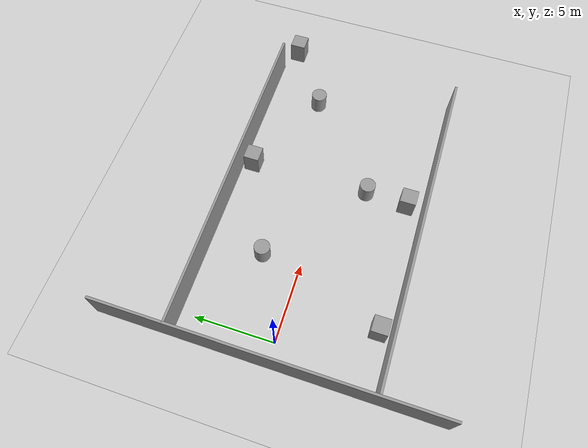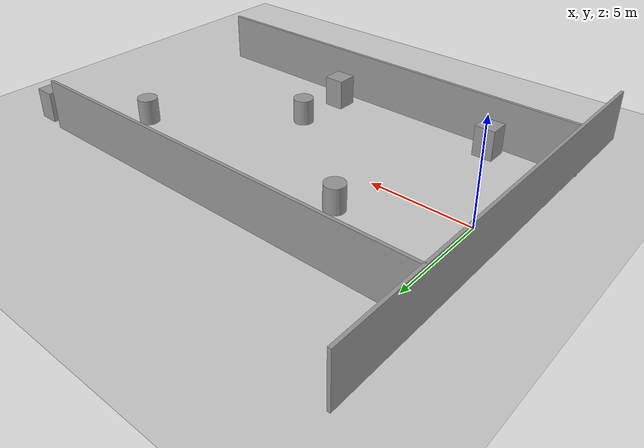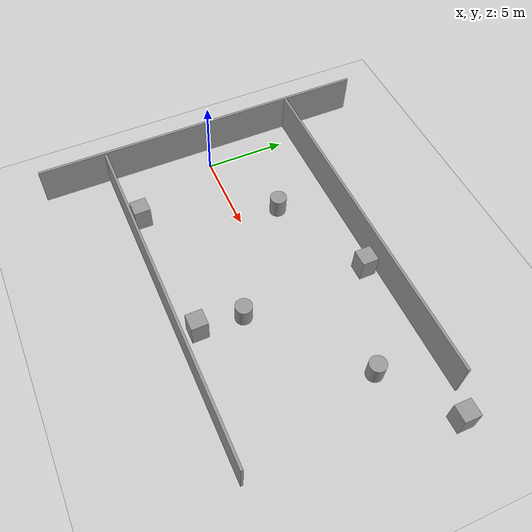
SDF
<sdf version="1.7">
 <world name="default">
  <light name="sun" type="directional">
   <pose>0 0 10 0 -0 0</pose>
   <diffuse>0.8 0.8 0.8 1</diffuse>
   <specular>0.2 0.2 0.2 1</specular>
   <attenuation>
    <range>1000</range>
    <constant>0.9</constant>
    <linear>0.01</linear>
    <quadratic>0.001</quadratic>
   </attenuation>
   <direction>-0.5 0.1 -0.9</direction>
   <spot><inner_angle>0</inner_angle><outer_angle>0</outer_angle><falloff>0</falloff></spot>
  </light>
  <model name="ground_plane">
   <static>1</static>
   <link name="link">
    <collision name="collision">
     <geometry><plane><normal>0 0 1</normal><size>100 100</size></plane></geometry>
     <surface>
      <contact><collide_bitmask>65535</collide_bitmask></contact>
      <friction><ode><mu>100</mu><mu2>50</mu2></ode></friction>
     </surface>
    </collision>
    <visual name="visual">
     <geometry><plane><normal>0 0 1</normal><size>100 100</size></plane></geometry>
     <material>
      <script><uri>file://media/materials/scripts/gazebo.material</uri><name>Gazebo/Grey</name></script>
     </material>
    </visual>
   </link>
  </model>
  <physics type="ode">
   <max_step_size>0.001</max_step_size>
   <real_time_factor>1</real_time_factor>
   <real_time_update_rate>1000</real_time_update_rate>
  </physics>
  <gravity>0 0 -9.8</gravity>
  <magnetic_field>6e-06 2.3e-05 -4.2e-05</magnetic_field>
  <atmosphere type="adiabatic"/>
  <scene><ambient>0.4 0.4 0.4 1</ambient><background>0.7 0.7 0.7 1</background><shadows>1</shadows></scene>
  <spherical_coordinates>
   <surface_model>EARTH_WGS84</surface_model>
   <latitude_deg>0</latitude_deg>
   <longitude_deg>0</longitude_deg>
   <elevation>0</elevation>
   <heading_deg>0</heading_deg>
  </spherical_coordinates>
  <model name="unit_box_10obs0">
   <link name="link">
    <inertial>
     <mass>1</mass>
     <inertia>
      <ixx>0.166667</ixx>
      <ixy>0</ixy>
      <ixz>0</ixz>
      <iyy>0.166667</iyy>
      <iyz>0</iyz>
      <izz>0.166667</izz>
     </inertia>
    </inertial>
    <visual name="visual">
     <geometry><box><size>1 1 2</size></box></geometry>
     <material>
      <script><name>Gazebo/Grey</name><uri>file://media/materials/scripts/gazebo.material</uri></script>
      <shader type="pixel"><normal_map>__default__</normal_map></shader>
      <ambient>0.3 0.3 0.3 1</ambient>
      <diffuse>0.7 0.7 0.7 1</diffuse>
      <specular>0.01 0.01 0.01 1</specular>
      <emissive>0 0 0 1</emissive>
     </material>
    </visual>
    <collision name="collision">
     <geometry><box><size>1 1 1</size></box></geometry>
     <surface>
      <friction>
       <ode><mu>1</mu><mu2>1</mu2><fdir1>0 0 0</fdir1><slip1>0</slip1><slip2>0</slip2></ode>
       <torsional>
        <coefficient>1</coefficient>
        <patch_radius>0</patch_radius>
        <surface_radius>0</surface_radius>
        <use_patch_radius>1</use_patch_radius>
        <ode><slip>0</slip></ode>
       </torsional>
      </friction>
      <bounce><restitution_coefficient>0</restitution_coefficient><threshold>1e+06</threshold></bounce>
      <contact>
       <collide_without_contact>0</collide_without_contact>
       <collide_without_contact_bitmask>1</collide_without_contact_bitmask>
       <collide_bitmask>1</collide_bitmask>
       <ode>
        <soft_cfm>0</soft_cfm>
        <soft_erp>0.2</soft_erp>
        <kp>1e+13</kp>
        <kd>1</kd>
        <max_vel>0.01</max_vel>
        <min_depth>0</min_depth>
       </ode>
       <bullet>
        <split_impulse>1</split_impulse>
        <split_impulse_penetration_threshold>-0.01</split_impulse_penetration_threshold>
        <soft_cfm>0</soft_cfm>
        <soft_erp>0.2</soft_erp>
        <kp>1e+13</kp>
        <kd>1</kd>
       </bullet>
      </contact>
     </surface>
    </collision>
   </link>
   <static>0</static>
   <pose>21 5.2 0.5 0 -0 0</pose>
  </model>
  <model name="unit_box_10obs1">
   <link name="link">
    <inertial>
     <mass>1</mass>
     <inertia>
      <ixx>0.166667</ixx>
      <ixy>0</ixy>
      <ixz>0</ixz>
      <iyy>0.166667</iyy>
      <iyz>0</iyz>
      <izz>0.166667</izz>
     </inertia>
    </inertial>
    <visual name="visual">
     <geometry><box><size>1 1 2</size></box></geometry>
     <material>
      <script><name>Gazebo/Grey</name><uri>file://media/materials/scripts/gazebo.material</uri></script>
      <shader type="pixel"><normal_map>__default__</normal_map></shader>
      <ambient>0.3 0.3 0.3 1</ambient>
      <diffuse>0.7 0.7 0.7 1</diffuse>
      <specular>0.01 0.01 0.01 1</specular>
      <emissive>0 0 0 1</emissive>
     </material>
    </visual>
    <collision name="collision">
     <geometry><box><size>1 1 1</size></box></geometry>
     <surface>
      <friction>
       <ode><mu>1</mu><mu2>1</mu2><fdir1>0 0 0</fdir1><slip1>0</slip1><slip2>0</slip2></ode>
       <torsional>
        <coefficient>1</coefficient>
        <patch_radius>0</patch_radius>
        <surface_radius>0</surface_radius>
        <use_patch_radius>1</use_patch_radius>
        <ode><slip>0</slip></ode>
       </torsional>
      </friction>
      <bounce><restitution_coefficient>0</restitution_coefficient><threshold>1e+06</threshold></bounce>
      <contact>
       <collide_without_contact>0</collide_without_contact>
       <collide_without_contact_bitmask>1</collide_without_contact_bitmask>
       <collide_bitmask>1</collide_bitmask>
       <ode>
        <soft_cfm>0</soft_cfm>
        <soft_erp>0.2</soft_erp>
        <kp>1e+13</kp>
        <kd>1</kd>
        <max_vel>0.01</max_vel>
        <min_depth>0</min_depth>
       </ode>
       <bullet>
        <split_impulse>1</split_impulse>
        <split_impulse_penetration_threshold>-0.01</split_impulse_penetration_threshold>
        <soft_cfm>0</soft_cfm>
        <soft_erp>0.2</soft_erp>
        <kp>1e+13</kp>
        <kd>1</kd>
       </bullet>
      </contact>
     </surface>
    </collision>
   </link>
   <static>0</static>
   <pose>11 -5.2 0.5 0 -0 0</pose>
  </model>
  <model name="unit_box_10obs2">
   <link name="link">
    <inertial>
     <mass>1</mass>
     <inertia>
      <ixx>0.166667</ixx>
      <ixy>0</ixy>
      <ixz>0</ixz>
      <iyy>0.166667</iyy>
      <iyz>0</iyz>
      <izz>0.166667</izz>
     </inertia>
    </inertial>
    <visual name="visual">
     <geometry><box><size>1 1 2</size></box></geometry>
     <material>
      <script><name>Gazebo/Grey</name><uri>file://media/materials/scripts/gazebo.material</uri></script>
      <shader type="pixel"><normal_map>__default__</normal_map></shader>
      <ambient>0.3 0.3 0.3 1</ambient>
      <diffuse>0.7 0.7 0.7 1</diffuse>
      <specular>0.01 0.01 0.01 1</specular>
      <emissive>0 0 0 1</emissive>
     </material>
    </visual>
    <collision name="collision">
     <geometry><box><size>1 1 1</size></box></geometry>
     <surface>
      <friction>
       <ode><mu>1</mu><mu2>1</mu2><fdir1>0 0 0</fdir1><slip1>0</slip1><slip2>0</slip2></ode>
       <torsional>
        <coefficient>1</coefficient>
        <patch_radius>0</patch_radius>
        <surface_radius>0</surface_radius>
        <use_patch_radius>1</use_patch_radius>
        <ode><slip>0</slip></ode>
       </torsional>
      </friction>
      <bounce><restitution_coefficient>0</restitution_coefficient><threshold>1e+06</threshold></bounce>
      <contact>
       <collide_without_contact>0</collide_without_contact>
       <collide_without_contact_bitmask>1</collide_without_contact_bitmask>
       <collide_bitmask>1</collide_bitmask>
       <ode>
        <soft_cfm>0</soft_cfm>
        <soft_erp>0.2</soft_erp>
        <kp>1e+13</kp>
        <kd>1</kd>
        <max_vel>0.01</max_vel>
        <min_depth>0</min_depth>
       </ode>
       <bullet>
        <split_impulse>1</split_impulse>
        <split_impulse_penetration_threshold>-0.01</split_impulse_penetration_threshold>
        <soft_cfm>0</soft_cfm>
        <soft_erp>0.2</soft_erp>
        <kp>1e+13</kp>
        <kd>1</kd>
       </bullet>
      </contact>
     </surface>
    </collision>
   </link>
   <static>0</static>
   <pose>11 5.2 0.499995 -1e-05 -0 0</pose>
  </model>
  <model name="unit_box_10obs3">
   <link name="link">
    <inertial>
     <mass>1</mass>
     <inertia>
      <ixx>0.166667</ixx>
      <ixy>0</ixy>
      <ixz>0</ixz>
      <iyy>0.166667</iyy>
      <iyz>0</iyz>
      <izz>0.166667</izz>
     </inertia>
    </inertial>
    <visual name="visual">
     <geometry><box><size>1 1 2</size></box></geometry>
     <material>
      <script><name>Gazebo/Grey</name><uri>file://media/materials/scripts/gazebo.material</uri></script>
      <shader type="pixel"><normal_map>__default__</normal_map></shader>
      <ambient>0.3 0.3 0.3 1</ambient>
      <diffuse>0.7 0.7 0.7 1</diffuse>
      <specular>0.01 0.01 0.01 1</specular>
      <emissive>0 0 0 1</emissive>
     </material>
    </visual>
    <collision name="collision">
     <geometry><box><size>1 1 1</size></box></geometry>
     <surface>
      <friction>
       <ode><mu>1</mu><mu2>1</mu2><fdir1>0 0 0</fdir1><slip1>0</slip1><slip2>0</slip2></ode>
       <torsional>
        <coefficient>1</coefficient>
        <patch_radius>0</patch_radius>
        <surface_radius>0</surface_radius>
        <use_patch_radius>1</use_patch_radius>
        <ode><slip>0</slip></ode>
       </torsional>
      </friction>
      <bounce><restitution_coefficient>0</restitution_coefficient><threshold>1e+06</threshold></bounce>
      <contact>
       <collide_without_contact>0</collide_without_contact>
       <collide_without_contact_bitmask>1</collide_without_contact_bitmask>
       <collide_bitmask>1</collide_bitmask>
       <ode>
        <soft_cfm>0</soft_cfm>
        <soft_erp>0.2</soft_erp>
        <kp>1e+13</kp>
        <kd>1</kd>
        <max_vel>0.01</max_vel>
        <min_depth>0</min_depth>
       </ode>
       <bullet>
        <split_impulse>1</split_impulse>
        <split_impulse_penetration_threshold>-0.01</split_impulse_penetration_threshold>
        <soft_cfm>0</soft_cfm>
        <soft_erp>0.2</soft_erp>
        <kp>1e+13</kp>
        <kd>1</kd>
       </bullet>
      </contact>
     </surface>
    </collision>
   </link>
   <static>0</static>
   <pose>2.5 -5.51421 0.499995 -0 -1e-05 -4e-06</pose>
  </model>
  <model name="cylinder0.5-1.5obs4">
   <link name="link_0">
    <inertial>
     <mass>1</mass>
     <inertia><ixx>0.145833</ixx><ixy>0</ixy><ixz>0</ixz><iyy>0.145833</iyy><iyz>0</iyz><izz>0.125</izz></inertia>
    </inertial>
    <visual name="visual">
     <geometry><cylinder><radius>0.5</radius><length>1.5</length></cylinder></geometry>
     <material>
      <lighting>1</lighting>
      <script><uri>file://media/materials/scripts/gazebo.material</uri><name>Gazebo/Grey</name></script>
      <shader type="pixel"><normal_map>__default__</normal_map></shader>
      <ambient>0.3 0.3 0.3 1</ambient>
      <diffuse>0.7 0.7 0.7 1</diffuse>
      <specular>0.01 0.01 0.01 1</specular>
      <emissive>0 0 0 1</emissive>
     </material>
    </visual>
    <collision name="collision">
     <geometry><cylinder><radius>0.5</radius><length>1</length></cylinder></geometry>
     <surface>
      <friction>
       <ode><mu>1</mu><mu2>1</mu2><fdir1>0 0 0</fdir1><slip1>0</slip1><slip2>0</slip2></ode>
       <torsional>
        <coefficient>1</coefficient>
        <patch_radius>0</patch_radius>
        <surface_radius>0</surface_radius>
        <use_patch_radius>1</use_patch_radius>
        <ode><slip>0</slip></ode>
       </torsional>
      </friction>
      <bounce><restitution_coefficient>0</restitution_coefficient><threshold>1e+06</threshold></bounce>
      <contact>
       <collide_without_contact>0</collide_without_contact>
       <collide_without_contact_bitmask>1</collide_without_contact_bitmask>
       <collide_bitmask>1</collide_bitmask>
       <ode>
        <soft_cfm>0</soft_cfm>
        <soft_erp>0.2</soft_erp>
        <kp>1e+13</kp>
        <kd>1</kd>
        <max_vel>0.01</max_vel>
        <min_depth>0</min_depth>
       </ode>
       <bullet>
        <split_impulse>1</split_impulse>
        <split_impulse_penetration_threshold>-0.01</split_impulse_penetration_threshold>
        <soft_cfm>0</soft_cfm>
        <soft_erp>0.2</soft_erp>
        <kp>1e+13</kp>
        <kd>1</kd>
       </bullet>
      </contact>
     </surface>
    </collision>
   </link>
   <static>0</static>
   <pose>17 2.5 0.5 0 -0 0</pose>
  </model>
  <model name="cylinder0.5-1.5obs5">
   <link name="link_0">
    <inertial>
     <mass>1</mass>
     <inertia><ixx>0.145833</ixx><ixy>0</ixy><ixz>0</ixz><iyy>0.145833</iyy><iyz>0</iyz><izz>0.125</izz></inertia>
    </inertial>
    <visual name="visual">
     <geometry><cylinder><radius>0.5</radius><length>1.5</length></cylinder></geometry>
     <material>
      <lighting>1</lighting>
      <script><uri>file://media/materials/scripts/gazebo.material</uri><name>Gazebo/Grey</name></script>
      <shader type="pixel"><normal_map>__default__</normal_map></shader>
      <ambient>0.3 0.3 0.3 1</ambient>
      <diffuse>0.7 0.7 0.7 1</diffuse>
      <specular>0.01 0.01 0.01 1</specular>
      <emissive>0 0 0 1</emissive>
     </material>
    </visual>
    <collision name="collision">
     <geometry><cylinder><radius>0.5</radius><length>1</length></cylinder></geometry>
     <surface>
      <friction>
       <ode><mu>1</mu><mu2>1</mu2><fdir1>0 0 0</fdir1><slip1>0</slip1><slip2>0</slip2></ode>
       <torsional>
        <coefficient>1</coefficient>
        <patch_radius>0</patch_radius>
        <surface_radius>0</surface_radius>
        <use_patch_radius>1</use_patch_radius>
        <ode><slip>0</slip></ode>
       </torsional>
      </friction>
      <bounce><restitution_coefficient>0</restitution_coefficient><threshold>1e+06</threshold></bounce>
      <contact>
       <collide_without_contact>0</collide_without_contact>
       <collide_without_contact_bitmask>1</collide_without_contact_bitmask>
       <collide_bitmask>1</collide_bitmask>
       <ode>
        <soft_cfm>0</soft_cfm>
        <soft_erp>0.2</soft_erp>
        <kp>1e+13</kp>
        <kd>1</kd>
        <max_vel>0.01</max_vel>
        <min_depth>0</min_depth>
       </ode>
       <bullet>
        <split_impulse>1</split_impulse>
        <split_impulse_penetration_threshold>-0.01</split_impulse_penetration_threshold>
        <soft_cfm>0</soft_cfm>
        <soft_erp>0.2</soft_erp>
        <kp>1e+13</kp>
        <kd>1</kd>
       </bullet>
      </contact>
     </surface>
    </collision>
   </link>
   <static>0</static>
   <pose>11.1176 -2.50005 0.499996 -0 -2e-06 9.5e-05</pose>
  </model>
  <model name="cylinder0.5-1.5obs6">
   <link name="link_0">
    <inertial>
     <mass>1</mass>
     <inertia><ixx>0.145833</ixx><ixy>0</ixy><ixz>0</ixz><iyy>0.145833</iyy><iyz>0</iyz><izz>0.125</izz></inertia>
    </inertial>
    <visual name="visual">
     <geometry><cylinder><radius>0.5</radius><length>1.5</length></cylinder></geometry>
     <material>
      <lighting>1</lighting>
      <script><uri>file://media/materials/scripts/gazebo.material</uri><name>Gazebo/Grey</name></script>
      <shader type="pixel"><normal_map>__default__</normal_map></shader>
      <ambient>0.3 0.3 0.3 1</ambient>
      <diffuse>0.7 0.7 0.7 1</diffuse>
      <specular>0.01 0.01 0.01 1</specular>
      <emissive>0 0 0 1</emissive>
     </material>
    </visual>
    <collision name="collision">
     <geometry><cylinder><radius>0.5</radius><length>1</length></cylinder></geometry>
     <surface>
      <friction>
       <ode><mu>1</mu><mu2>1</mu2><fdir1>0 0 0</fdir1><slip1>0</slip1><slip2>0</slip2></ode>
       <torsional>
        <coefficient>1</coefficient>
        <patch_radius>0</patch_radius>
        <surface_radius>0</surface_radius>
        <use_patch_radius>1</use_patch_radius>
        <ode><slip>0</slip></ode>
       </torsional>
      </friction>
      <bounce><restitution_coefficient>0</restitution_coefficient><threshold>1e+06</threshold></bounce>
      <contact>
       <collide_without_contact>0</collide_without_contact>
       <collide_without_contact_bitmask>1</collide_without_contact_bitmask>
       <collide_bitmask>1</collide_bitmask>
       <ode>
        <soft_cfm>0</soft_cfm>
        <soft_erp>0.2</soft_erp>
        <kp>1e+13</kp>
        <kd>1</kd>
        <max_vel>0.01</max_vel>
        <min_depth>0</min_depth>
       </ode>
       <bullet>
        <split_impulse>1</split_impulse>
        <split_impulse_penetration_threshold>-0.01</split_impulse_penetration_threshold>
        <soft_cfm>0</soft_cfm>
        <soft_erp>0.2</soft_erp>
        <kp>1e+13</kp>
        <kd>1</kd>
       </bullet>
      </contact>
     </surface>
    </collision>
   </link>
   <static>0</static>
   <pose>5 2.5 0.5 0 -0 0</pose>
  </model>
  <light name="user_point_light_0" type="point">
   <pose>2.27241 -0.05226 1 0 -0 0</pose>
   <diffuse>0.5 0.5 0.5 1</diffuse>
   <specular>0.1 0.1 0.1 1</specular>
   <attenuation>
    <range>20</range>
    <constant>0.5</constant>
    <linear>0.01</linear>
    <quadratic>0.001</quadratic>
   </attenuation>
   <cast_shadows>0</cast_shadows>
   <direction>0 0 -1</direction>
   <spot><inner_angle>0</inner_angle><outer_angle>0</outer_angle><falloff>0</falloff></spot>
  </light>
  <model name="wall-21">
   <pose>9 3.00042 0.105319 0 -0 0</pose>
   <link name="Wall_12">
    <collision name="Wall_12_Collision">
     <geometry><box><size>21 0.15 2.5</size></box></geometry>
     <pose>0 0 1.25 0 -0 0</pose>
    </collision>
    <visual name="Wall_12_Visual">
     <pose>0 0 1.25 0 -0 0</pose>
     <geometry><box><size>21 0.15 2.5</size></box></geometry>
     <material>
      <script><uri>file://media/materials/scripts/gazebo.material</uri><name>Gazebo/Grey</name></script>
      <ambient>1 1 1 1</ambient>
     </material>
     <meta><layer>0</layer></meta>
    </visual>
    <pose>0.039909 2.91077 0 0 -0 3.14159</pose>
   </link>
   <static>1</static>
  </model>
  <model name="wall-21_clone">
   <pose>9 -9.2 0 0 -0 0</pose>
   <link name="Wall_12">
    <collision name="Wall_12_Collision">
     <geometry><box><size>21 0.15 2.5</size></box></geometry>
     <pose>0 0 1.25 0 -0 0</pose>
    </collision>
    <visual name="Wall_12_Visual">
     <pose>0 0 1.25 0 -0 0</pose>
     <geometry><box><size>21 0.15 2.5</size></box></geometry>
     <material>
      <script><uri>file://media/materials/scripts/gazebo.material</uri><name>Gazebo/Grey</name></script>
      <ambient>1 1 1 1</ambient>
     </material>
     <meta><layer>0</layer></meta>
    </visual>
    <pose>0.039909 2.91077 0 0 -0 3.14159</pose>
   </link>
   <static>1</static>
  </model>
  <model name="wall-21_clone_0">
   <pose>1.5 0 0.105319 0 -0 1.57</pose>
   <link name="Wall_12">
    <collision name="Wall_12_Collision">
     <geometry><box><size>21 0.15 2.5</size></box></geometry>
     <pose>0 0 1.25 0 -0 0</pose>
    </collision>
    <visual name="Wall_12_Visual">
     <pose>0 0 1.25 0 -0 0</pose>
     <geometry><box><size>21 0.15 2.5</size></box></geometry>
     <material>
      <script><uri>file://media/materials/scripts/gazebo.material</uri><name>Gazebo/Grey</name></script>
      <ambient>1 1 1 1</ambient>
     </material>
     <meta><layer>0</layer></meta>
    </visual>
    <pose>0.039909 2.91077 0 0 -0 3.14159</pose>
   </link>
   <static>1</static>
  </model>
 </world>
</sdf>
